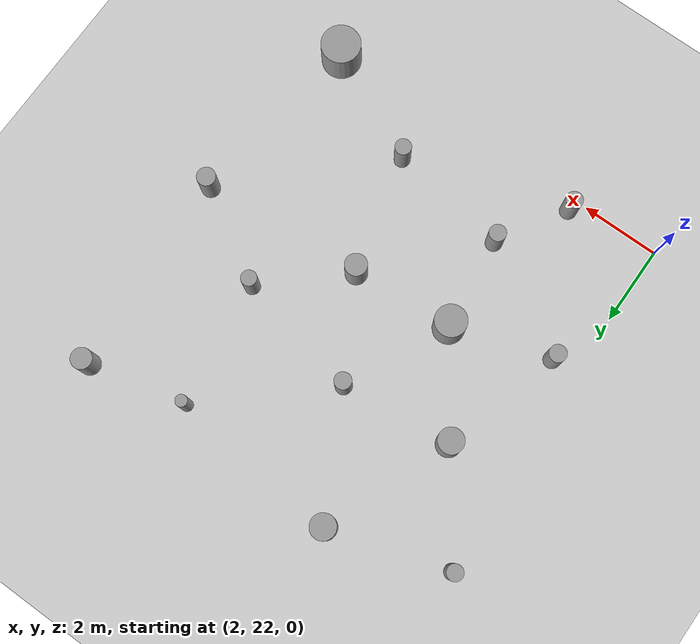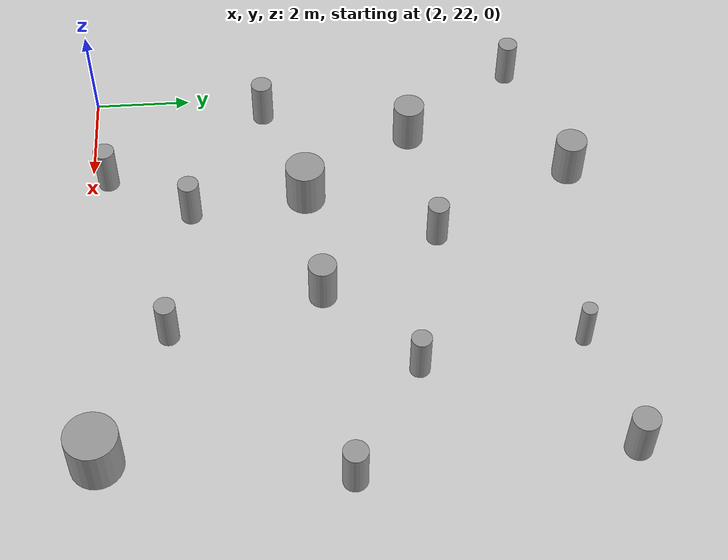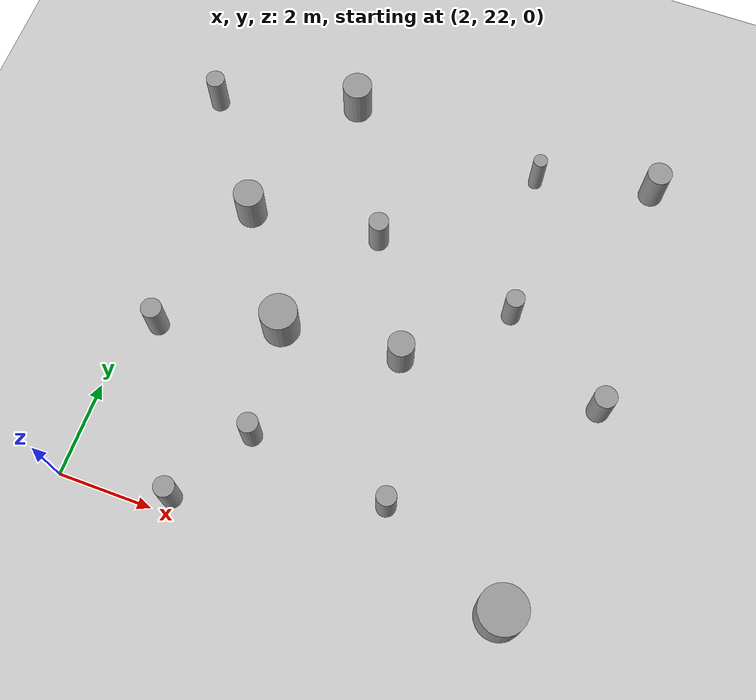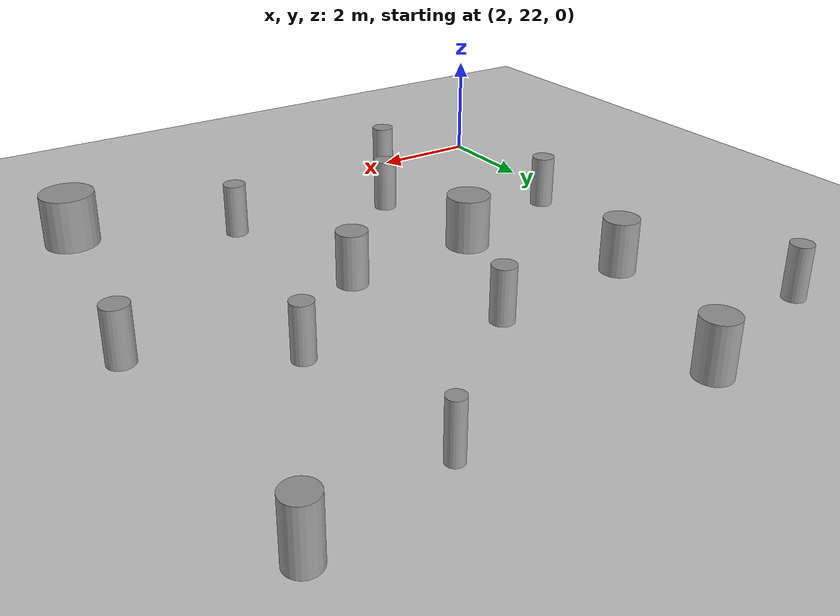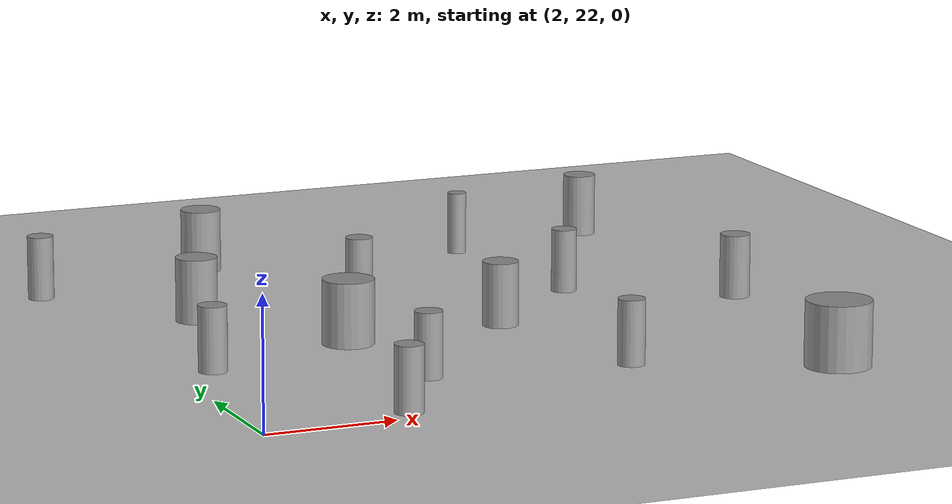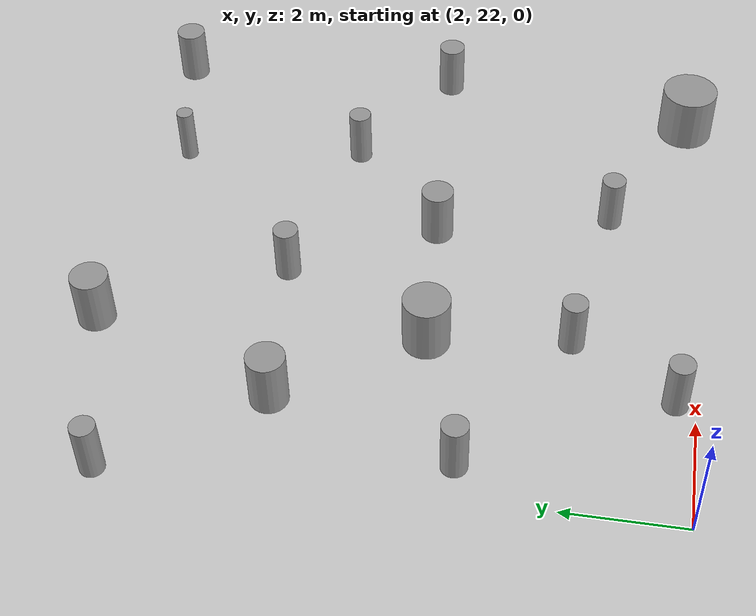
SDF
<sdf version="1.6">
 <world name="default">
  <light name="sun" type="directional">
   <pose>0 0 10 0 -0 0</pose>
   <diffuse>0.8 0.8 0.8 1</diffuse>
   <specular>0.2 0.2 0.2 1</specular>
   <attenuation>
    <range>1000</range>
    <constant>0.9</constant>
    <linear>0.01</linear>
    <quadratic>0.001</quadratic>
   </attenuation>
   <direction>-0.5 0.1 -0.9</direction>
  </light>
  <model name="ground_plane">
   <static>1</static>
   <link name="link">
    <collision name="collision">
     <geometry><plane><normal>0 0 1</normal><size>100 100</size></plane></geometry>
     <surface><friction><ode><mu>100</mu><mu2>50</mu2></ode></friction></surface>
    </collision>
    <visual name="visual">
     <cast_shadows>0</cast_shadows>
     <geometry><plane><normal>0 0 1</normal><size>100 100</size></plane></geometry>
     <material>
      <script><uri>file://media/materials/scripts/gazebo.material</uri><name>Gazebo/Grey</name></script>
     </material>
    </visual>
   </link>
  </model>
  <gravity>0 0 -9.8</gravity>
  <magnetic_field>6e-06 2.3e-05 -4.2e-05</magnetic_field>
  <atmosphere type="adiabatic"/>
  <physics name="default_physics" default="0" type="ode">
   <max_step_size>0.001</max_step_size>
   <real_time_factor>1</real_time_factor>
   <real_time_update_rate>1000</real_time_update_rate>
  </physics>
  <scene><ambient>0.4 0.4 0.4 1</ambient><background>0.7 0.7 0.7 1</background><shadows>0</shadows></scene>
  <audio><device>default</device></audio>
  <spherical_coordinates>
   <surface_model>EARTH_WGS84</surface_model>
   <latitude_deg>0</latitude_deg>
   <longitude_deg>0</longitude_deg>
   <elevation>0</elevation>
   <heading_deg>0</heading_deg>
  </spherical_coordinates>
  <model name="unit_cylinder">
   <pose>3.44659 28.7116 0.499992 0 -0 0</pose>
   <link name="link">
    <inertial>
     <mass>1</mass>
     <inertia><ixx>0.145833</ixx><ixy>0</ixy><ixz>0</ixz><iyy>0.145833</iyy><iyz>0</iyz><izz>0.125</izz></inertia>
    </inertial>
    <collision name="collision">
     <geometry><cylinder><radius>0.320817</radius><length>1</length></cylinder></geometry>
    </collision>
    <visual name="visual">
     <geometry><cylinder><radius>0.320817</radius><length>1</length></cylinder></geometry>
     <material>
      <script><name>Gazebo/Grey</name><uri>file://media/materials/scripts/gazebo.material</uri></script>
     </material>
    </visual>
   </link>
  </model>
  <model name="unit_cylinder_0">
   <pose>9.00951 31.5612 0.499993 -0 -0 -1e-06</pose>
   <link name="link">
    <inertial>
     <mass>1</mass>
     <inertia><ixx>0.145833</ixx><ixy>0</ixy><ixz>0</ixz><iyy>0.145833</iyy><iyz>0</iyz><izz>0.125</izz></inertia>
    </inertial>
    <collision name="collision">
     <geometry><cylinder><radius>0.150308</radius><length>1</length></cylinder></geometry>
    </collision>
    <visual name="visual">
     <geometry><cylinder><radius>0.150308</radius><length>1</length></cylinder></geometry>
     <material>
      <script><name>Gazebo/Grey</name><uri>file://media/materials/scripts/gazebo.material</uri></script>
     </material>
    </visual>
   </link>
  </model>
  <model name="unit_cylinder_1">
   <pose>7.61257 26.6311 0.499998 0 -0 0</pose>
   <link name="link">
    <inertial>
     <mass>1</mass>
     <inertia><ixx>0.145833</ixx><ixy>0</ixy><ixz>0</ixz><iyy>0.145833</iyy><iyz>0</iyz><izz>0.125</izz></inertia>
    </inertial>
    <collision name="collision">
     <geometry><cylinder><radius>0.278801</radius><length>1</length></cylinder></geometry>
    </collision>
    <visual name="visual">
     <geometry><cylinder><radius>0.278801</radius><length>1</length></cylinder></geometry>
     <material>
      <script><name>Gazebo/Grey</name><uri>file://media/materials/scripts/gazebo.material</uri></script>
     </material>
    </visual>
   </link>
  </model>
  <model name="unit_cylinder_2">
   <pose>6.26009 29.0317 0.499996 0 -0 1e-06</pose>
   <link name="link">
    <inertial>
     <mass>1</mass>
     <inertia><ixx>0.145833</ixx><ixy>0</ixy><ixz>0</ixz><iyy>0.145833</iyy><iyz>0</iyz><izz>0.125</izz></inertia>
    </inertial>
    <collision name="collision">
     <geometry><cylinder><radius>0.213507</radius><length>1</length></cylinder></geometry>
    </collision>
    <visual name="visual">
     <geometry><cylinder><radius>0.213507</radius><length>1</length></cylinder></geometry>
     <material>
      <script><name>Gazebo/Grey</name><uri>file://media/materials/scripts/gazebo.material</uri></script>
     </material>
    </visual>
   </link>
  </model>
  <model name="unit_cylinder_3">
   <pose>5.33666 24.0581 0.499997 0 -0 0</pose>
   <link name="link">
    <inertial>
     <mass>1</mass>
     <inertia><ixx>0.145833</ixx><ixy>0</ixy><ixz>0</ixz><iyy>0.145833</iyy><iyz>0</iyz><izz>0.125</izz></inertia>
    </inertial>
    <collision name="collision">
     <geometry><cylinder><radius>0.213521</radius><length>1</length></cylinder></geometry>
    </collision>
    <visual name="visual">
     <geometry><cylinder><radius>0.213521</radius><length>1</length></cylinder></geometry>
     <material>
      <script><name>Gazebo/Grey</name><uri>file://media/materials/scripts/gazebo.material</uri></script>
     </material>
    </visual>
   </link>
  </model>
  <model name="unit_cylinder_4">
   <pose>2.58263 25.6252 0.499991 0 -0 -1e-06</pose>
   <link name="link">
    <inertial>
     <mass>1</mass>
     <inertia><ixx>0.145833</ixx><ixy>0</ixy><ixz>0</ixz><iyy>0.145833</iyy><iyz>0</iyz><izz>0.125</izz></inertia>
    </inertial>
    <collision name="collision">
     <geometry><cylinder><radius>0.217776</radius><length>1</length></cylinder></geometry>
    </collision>
    <visual name="visual">
     <geometry><cylinder><radius>0.217776</radius><length>1</length></cylinder></geometry>
     <material>
      <script><name>Gazebo/Grey</name><uri>file://media/materials/scripts/gazebo.material</uri></script>
     </material>
    </visual>
   </link>
  </model>
  <model name="unit_cylinder_5">
   <pose>9.46784 28.353 0.499993 0 -0 2e-06</pose>
   <link name="link">
    <inertial>
     <mass>1</mass>
     <inertia><ixx>0.145833</ixx><ixy>0</ixy><ixz>0</ixz><iyy>0.145833</iyy><iyz>0</iyz><izz>0.125</izz></inertia>
    </inertial>
    <collision name="collision">
     <geometry><cylinder><radius>0.197872</radius><length>1</length></cylinder></geometry>
    </collision>
    <visual name="visual">
     <geometry><cylinder><radius>0.197872</radius><length>1</length></cylinder></geometry>
     <material>
      <script><name>Gazebo/Grey</name><uri>file://media/materials/scripts/gazebo.material</uri></script>
     </material>
    </visual>
   </link>
  </model>
  <model name="unit_cylinder_6">
   <pose>4.69447 31.9669 0.499998 0 -0 0</pose>
   <link name="link">
    <inertial>
     <mass>1</mass>
     <inertia><ixx>0.145833</ixx><ixy>0</ixy><ixz>0</ixz><iyy>0.145833</iyy><iyz>0</iyz><izz>0.125</izz></inertia>
    </inertial>
    <collision name="collision">
     <geometry><cylinder><radius>0.318835</radius><length>1</length></cylinder></geometry>
    </collision>
    <visual name="visual">
     <geometry><cylinder><radius>0.318835</radius><length>1</length></cylinder></geometry>
     <material>
      <script><name>Gazebo/Grey</name><uri>file://media/materials/scripts/gazebo.material</uri></script>
     </material>
    </visual>
   </link>
  </model>
  <model name="unit_cylinder_7">
   <pose>5.03375 26.4304 0.499998 2e-06 -3e-06 0</pose>
   <link name="link">
    <inertial>
     <mass>1</mass>
     <inertia><ixx>0.145833</ixx><ixy>0</ixy><ixz>0</ixz><iyy>0.145833</iyy><iyz>0</iyz><izz>0.125</izz></inertia>
    </inertial>
    <collision name="collision">
     <geometry><cylinder><radius>0.399373</radius><length>1</length></cylinder></geometry>
    </collision>
    <visual name="visual">
     <geometry><cylinder><radius>0.399373</radius><length>1</length></cylinder></geometry>
     <material>
      <script><name>Gazebo/Grey</name><uri>file://media/materials/scripts/gazebo.material</uri></script>
     </material>
    </visual>
   </link>
  </model>
  <model name="unit_cylinder_8">
   <pose>8.38088 23.617 0.499993 0 -0 1e-06</pose>
   <link name="link">
    <inertial>
     <mass>1</mass>
     <inertia><ixx>0.145833</ixx><ixy>0</ixy><ixz>0</ixz><iyy>0.145833</iyy><iyz>0</iyz><izz>0.125</izz></inertia>
    </inertial>
    <collision name="collision">
     <geometry><cylinder><radius>0.206672</radius><length>1</length></cylinder></geometry>
    </collision>
    <visual name="visual">
     <geometry><cylinder><radius>0.206672</radius><length>1</length></cylinder></geometry>
     <material>
      <script><name>Gazebo/Grey</name><uri>file://media/materials/scripts/gazebo.material</uri></script>
     </material>
    </visual>
   </link>
  </model>
  <model name="unit_cylinder_9">
   <pose>1.70894 31.0649 0.499996 0 -0 0</pose>
   <link name="link">
    <inertial>
     <mass>1</mass>
     <inertia><ixx>0.145833</ixx><ixy>0</ixy><ixz>0</ixz><iyy>0.145833</iyy><iyz>0</iyz><izz>0.125</izz></inertia>
    </inertial>
    <collision name="collision">
     <geometry><cylinder><radius>0.203278</radius><length>1</length></cylinder></geometry>
    </collision>
    <visual name="visual">
     <geometry><cylinder><radius>0.203278</radius><length>1</length></cylinder></geometry>
     <material>
      <script><name>Gazebo/Grey</name><uri>file://media/materials/scripts/gazebo.material</uri></script>
     </material>
    </visual>
   </link>
  </model>
  <model name="unit_cylinder_10">
   <pose>11.778 26.9598 0.5 1e-06 -1e-06 -4e-06</pose>
   <link name="link">
    <inertial>
     <mass>1</mass>
     <inertia><ixx>0.145833</ixx><ixy>0</ixy><ixz>0</ixz><iyy>0.145833</iyy><iyz>0</iyz><izz>0.125</izz></inertia>
    </inertial>
    <collision name="collision">
     <geometry><cylinder><radius>0.236065</radius><length>1</length></cylinder></geometry>
    </collision>
    <visual name="visual">
     <geometry><cylinder><radius>0.236065</radius><length>1</length></cylinder></geometry>
     <material>
      <script><name>Gazebo/Grey</name><uri>file://media/materials/scripts/gazebo.material</uri></script>
     </material>
    </visual>
   </link>
  </model>
  <model name="unit_cylinder_11">
   <pose>11.4808 32.1265 0.499999 0 -0 0</pose>
   <link name="link">
    <inertial>
     <mass>1</mass>
     <inertia><ixx>0.145833</ixx><ixy>0</ixy><ixz>0</ixz><iyy>0.145833</iyy><iyz>0</iyz><izz>0.125</izz></inertia>
    </inertial>
    <collision name="collision">
     <geometry><cylinder><radius>0.262134</radius><length>1</length></cylinder></geometry>
    </collision>
    <visual name="visual">
     <geometry><cylinder><radius>0.262134</radius><length>1</length></cylinder></geometry>
     <material>
      <script><name>Gazebo/Grey</name><uri>file://media/materials/scripts/gazebo.material</uri></script>
     </material>
    </visual>
   </link>
  </model>
  <model name="unit_cylinder_12">
   <pose>4.3095 22.3307 0.499996 0 -0 0</pose>
   <link name="link">
    <inertial>
     <mass>1</mass>
     <inertia><ixx>0.145833</ixx><ixy>0</ixy><ixz>0</ixz><iyy>0.145833</iyy><iyz>0</iyz><izz>0.125</izz></inertia>
    </inertial>
    <collision name="collision">
     <geometry><cylinder><radius>0.214368</radius><length>1</length></cylinder></geometry>
    </collision>
    <visual name="visual">
     <geometry><cylinder><radius>0.214368</radius><length>1</length></cylinder></geometry>
     <material>
      <script><name>Gazebo/Grey</name><uri>file://media/materials/scripts/gazebo.material</uri></script>
     </material>
    </visual>
   </link>
  </model>
  <model name="unit_cylinder_13">
   <pose>11.1351 22.3529 0.499997 3e-06 4e-06 -0</pose>
   <link name="link">
    <inertial>
     <mass>1</mass>
     <inertia><ixx>0.145833</ixx><ixy>0</ixy><ixz>0</ixz><iyy>0.145833</iyy><iyz>0</iyz><izz>0.125</izz></inertia>
    </inertial>
    <collision name="collision">
     <geometry><cylinder><radius>0.5</radius><length>1</length></cylinder></geometry>
    </collision>
    <visual name="visual">
     <geometry><cylinder><radius>0.5</radius><length>1</length></cylinder></geometry>
     <material>
      <script><name>Gazebo/Grey</name><uri>file://media/materials/scripts/gazebo.material</uri></script>
     </material>
    </visual>
   </link>
  </model>
 </world>
</sdf>
